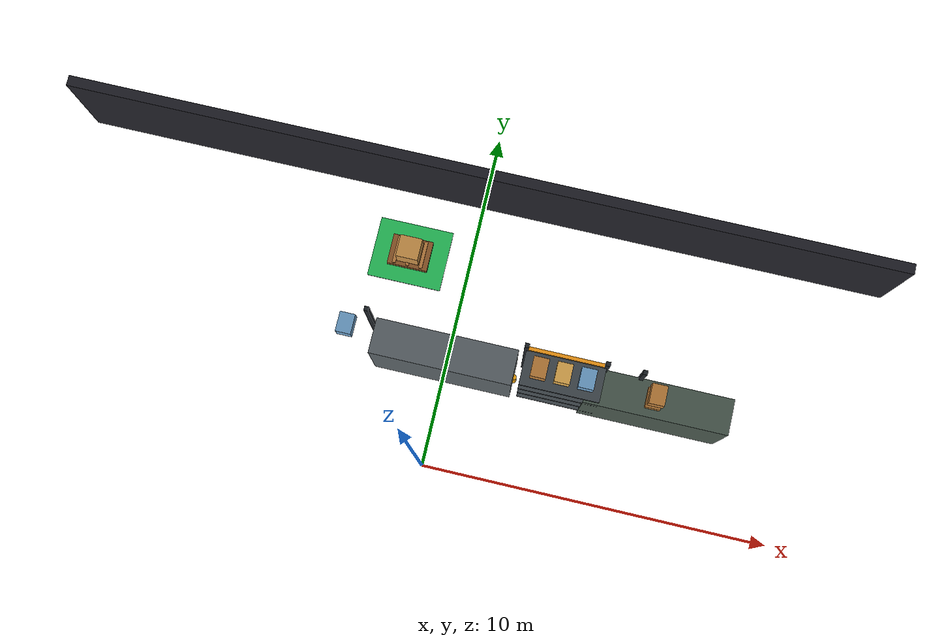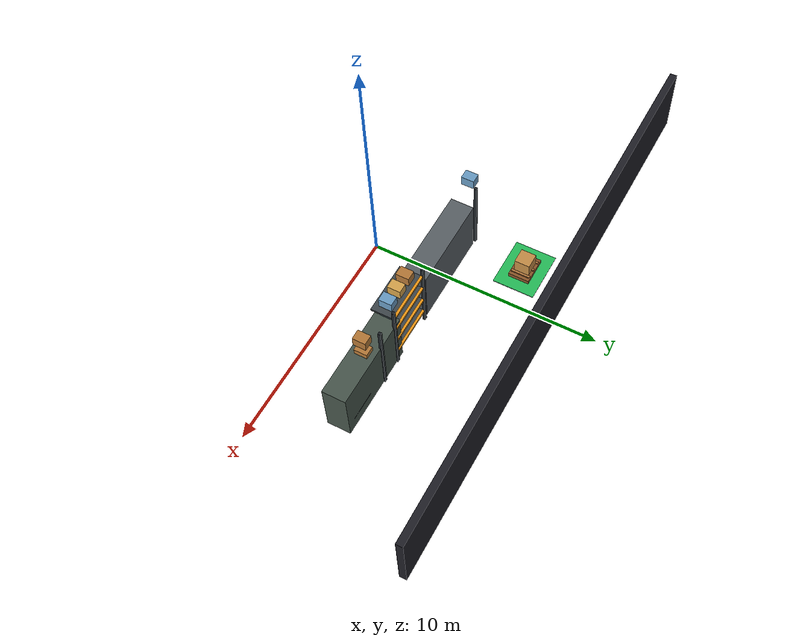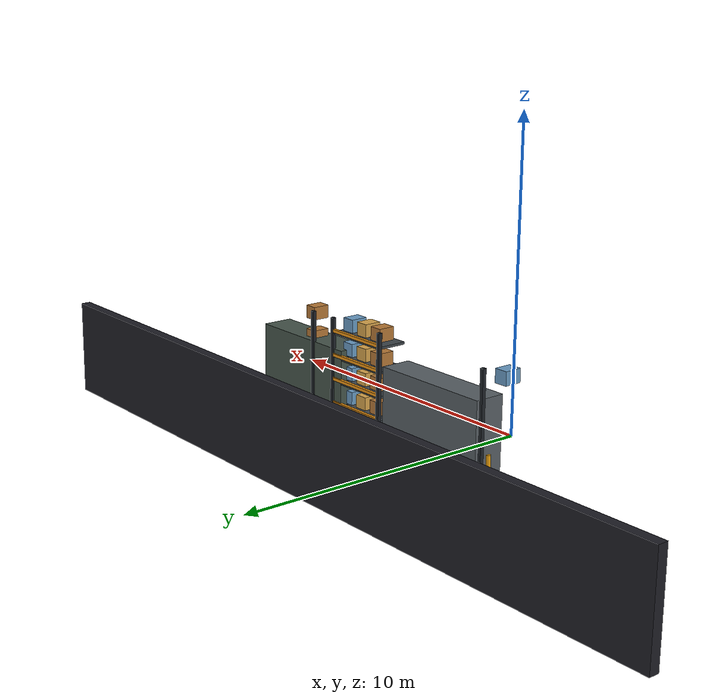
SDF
<sdf version="1.9">
 <world name="synaids_advanced_warehouse">
  <model name="wall_north">
   <static>true</static>
   <pose>0 8 1.5 0 0 0</pose>
   <link name="link">
    <collision name="collision"><geometry><box><size>24 0.3 3</size></box></geometry></collision>
    <visual name="visual">
     <geometry><box><size>24 0.3 3</size></box></geometry>
     <material><ambient>0.08 0.08 0.10 1</ambient><diffuse>0.12 0.12 0.15 1</diffuse></material>
    </visual>
   </link>
  </model>
  <model name="shelf_2">
   <static>true</static>
   <pose>0 3 1.2 0 0 0</pose>
   <link name="link">
    <collision name="collision"><geometry><box><size>4 1.0 2.4</size></box></geometry></collision>
    <visual name="visual">
     <geometry><box><size>4 1.0 2.4</size></box></geometry>
     <material><ambient>0.18 0.18 0.18 1</ambient><diffuse>0.35 0.38 0.40 1</diffuse></material>
    </visual>
   </link>
  </model>
  <model name="shelf_3">
   <static>true</static>
   <pose>6 3 1.2 0 0 0</pose>
   <link name="link">
    <collision name="collision"><geometry><box><size>4 1.0 2.4</size></box></geometry></collision>
    <visual name="visual">
     <geometry><box><size>4 1.0 2.4</size></box></geometry>
     <material><ambient>0.12 0.16 0.14 1</ambient><diffuse>0.28 0.34 0.30 1</diffuse></material>
    </visual>
   </link>
  </model>
  <model name="storage_rack_2_post_3">
   <static>true</static>
   <pose>-2.1999999999999997 3.5 1.7 0 0 0</pose>
   <link name="link">
    <visual name="visual">
     <geometry><box><size>0.12 0.12 3.4</size></box></geometry>
     <material>
      <ambient>0.12 0.14 0.16 1</ambient>
      <diffuse>0.12 0.14 0.16 1</diffuse>
      <specular>0.15 0.15 0.15 1</specular>
     </material>
    </visual>
    <collision name="collision"><geometry><box><size>0.12 0.12 3.4</size></box></geometry></collision>
   </link>
  </model>
  <model name="storage_rack_2_package_3_2">
   <static>true</static>
   <pose>-2.6499999999999995 3.0 3.21 0 0 0</pose>
   <link name="link">
    <visual name="visual">
     <geometry><box><size>0.42 0.55 0.42</size></box></geometry>
     <material>
      <ambient>0.42 0.62 0.78 1</ambient>
      <diffuse>0.42 0.62 0.78 1</diffuse>
      <specular>0.15 0.15 0.15 1</specular>
     </material>
    </visual>
    <collision name="collision"><geometry><box><size>0.42 0.55 0.42</size></box></geometry></collision>
   </link>
  </model>
  <model name="storage_rack_2_guard_right">
   <static>true</static>
   <pose>-2.0199999999999996 3.0 0.35 0 0 0</pose>
   <link name="link">
    <visual name="visual">
     <geometry><cylinder><radius>0.07</radius><length>0.7</length></cylinder></geometry>
     <material>
      <ambient>0.95 0.65 0.05 1</ambient>
      <diffuse>0.95 0.65 0.05 1</diffuse>
      <specular>0.15 0.15 0.15 1</specular>
     </material>
    </visual>
    <collision name="collision">
     <geometry><cylinder><radius>0.07</radius><length>0.7</length></cylinder></geometry>
    </collision>
   </link>
  </model>
  <model name="storage_rack_3_post_1">
   <static>true</static>
   <pose>2.1999999999999997 3.5 1.7 0 0 0</pose>
   <link name="link">
    <visual name="visual">
     <geometry><box><size>0.12 0.12 3.4</size></box></geometry>
     <material>
      <ambient>0.12 0.14 0.16 1</ambient>
      <diffuse>0.12 0.14 0.16 1</diffuse>
      <specular>0.15 0.15 0.15 1</specular>
     </material>
    </visual>
    <collision name="collision"><geometry><box><size>0.12 0.12 3.4</size></box></geometry></collision>
   </link>
  </model>
  <model name="storage_rack_3_post_3">
   <static>true</static>
   <pose>4.4 3.5 1.7 0 0 0</pose>
   <link name="link">
    <visual name="visual">
     <geometry><box><size>0.12 0.12 3.4</size></box></geometry>
     <material>
      <ambient>0.12 0.14 0.16 1</ambient>
      <diffuse>0.12 0.14 0.16 1</diffuse>
      <specular>0.15 0.15 0.15 1</specular>
     </material>
    </visual>
    <collision name="collision"><geometry><box><size>0.12 0.12 3.4</size></box></geometry></collision>
   </link>
  </model>
  <model name="storage_rack_3_beam_back_0">
   <static>true</static>
   <pose>3.3 3.5 0.65 0 0 0</pose>
   <link name="link">
    <visual name="visual">
     <geometry><box><size>2.2 0.1 0.1</size></box></geometry>
     <material>
      <ambient>0.95 0.60 0.08 1</ambient>
      <diffuse>0.95 0.60 0.08 1</diffuse>
      <specular>0.15 0.15 0.15 1</specular>
     </material>
    </visual>
    <collision name="collision"><geometry><box><size>2.2 0.1 0.1</size></box></geometry></collision>
   </link>
  </model>
  <model name="storage_rack_3_shelf_0">
   <static>true</static>
   <pose>3.3 3.0 0.5700000000000001 0 0 0</pose>
   <link name="link">
    <visual name="visual">
     <geometry><box><size>2.2 1.0 0.08</size></box></geometry>
     <material>
      <ambient>0.25 0.28 0.30 1</ambient>
      <diffuse>0.25 0.28 0.30 1</diffuse>
      <specular>0.15 0.15 0.15 1</specular>
     </material>
    </visual>
    <collision name="collision"><geometry><box><size>2.2 1.0 0.08</size></box></geometry></collision>
   </link>
  </model>
  <model name="storage_rack_3_package_0_0">
   <static>true</static>
   <pose>2.65 3.0 0.87 0 0 0</pose>
   <link name="link">
    <visual name="visual">
     <geometry><box><size>0.42 0.55 0.42</size></box></geometry>
     <material>
      <ambient>0.72 0.48 0.22 1</ambient>
      <diffuse>0.72 0.48 0.22 1</diffuse>
      <specular>0.15 0.15 0.15 1</specular>
     </material>
    </visual>
    <collision name="collision"><geometry><box><size>0.42 0.55 0.42</size></box></geometry></collision>
   </link>
  </model>
  <model name="storage_rack_3_package_0_1">
   <static>true</static>
   <pose>3.3 3.0 0.87 0 0 0</pose>
   <link name="link">
    <visual name="visual">
     <geometry><box><size>0.42 0.55 0.42</size></box></geometry>
     <material>
      <ambient>0.85 0.65 0.30 1</ambient>
      <diffuse>0.85 0.65 0.30 1</diffuse>
      <specular>0.15 0.15 0.15 1</specular>
     </material>
    </visual>
    <collision name="collision"><geometry><box><size>0.42 0.55 0.42</size></box></geometry></collision>
   </link>
  </model>
  <model name="storage_rack_3_package_0_2">
   <static>true</static>
   <pose>3.95 3.0 0.87 0 0 0</pose>
   <link name="link">
    <visual name="visual">
     <geometry><box><size>0.42 0.55 0.42</size></box></geometry>
     <material>
      <ambient>0.42 0.62 0.78 1</ambient>
      <diffuse>0.42 0.62 0.78 1</diffuse>
      <specular>0.15 0.15 0.15 1</specular>
     </material>
    </visual>
    <collision name="collision"><geometry><box><size>0.42 0.55 0.42</size></box></geometry></collision>
   </link>
  </model>
  <model name="storage_rack_3_beam_back_1">
   <static>true</static>
   <pose>3.3 3.5 1.4300000000000002 0 0 0</pose>
   <link name="link">
    <visual name="visual">
     <geometry><box><size>2.2 0.1 0.1</size></box></geometry>
     <material>
      <ambient>0.95 0.60 0.08 1</ambient>
      <diffuse>0.95 0.60 0.08 1</diffuse>
      <specular>0.15 0.15 0.15 1</specular>
     </material>
    </visual>
    <collision name="collision"><geometry><box><size>2.2 0.1 0.1</size></box></geometry></collision>
   </link>
  </model>
  <model name="storage_rack_3_shelf_1">
   <static>true</static>
   <pose>3.3 3.0 1.35 0 0 0</pose>
   <link name="link">
    <visual name="visual">
     <geometry><box><size>2.2 1.0 0.08</size></box></geometry>
     <material>
      <ambient>0.25 0.28 0.30 1</ambient>
      <diffuse>0.25 0.28 0.30 1</diffuse>
      <specular>0.15 0.15 0.15 1</specular>
     </material>
    </visual>
    <collision name="collision"><geometry><box><size>2.2 1.0 0.08</size></box></geometry></collision>
   </link>
  </model>
  <model name="storage_rack_3_package_1_0">
   <static>true</static>
   <pose>2.65 3.0 1.6500000000000001 0 0 0</pose>
   <link name="link">
    <visual name="visual">
     <geometry><box><size>0.42 0.55 0.42</size></box></geometry>
     <material>
      <ambient>0.72 0.48 0.22 1</ambient>
      <diffuse>0.72 0.48 0.22 1</diffuse>
      <specular>0.15 0.15 0.15 1</specular>
     </material>
    </visual>
    <collision name="collision"><geometry><box><size>0.42 0.55 0.42</size></box></geometry></collision>
   </link>
  </model>
  <model name="storage_rack_3_package_1_1">
   <static>true</static>
   <pose>3.3 3.0 1.6500000000000001 0 0 0</pose>
   <link name="link">
    <visual name="visual">
     <geometry><box><size>0.42 0.55 0.42</size></box></geometry>
     <material>
      <ambient>0.85 0.65 0.30 1</ambient>
      <diffuse>0.85 0.65 0.30 1</diffuse>
      <specular>0.15 0.15 0.15 1</specular>
     </material>
    </visual>
    <collision name="collision"><geometry><box><size>0.42 0.55 0.42</size></box></geometry></collision>
   </link>
  </model>
  <model name="storage_rack_3_package_1_2">
   <static>true</static>
   <pose>3.95 3.0 1.6500000000000001 0 0 0</pose>
   <link name="link">
    <visual name="visual">
     <geometry><box><size>0.42 0.55 0.42</size></box></geometry>
     <material>
      <ambient>0.42 0.62 0.78 1</ambient>
      <diffuse>0.42 0.62 0.78 1</diffuse>
      <specular>0.15 0.15 0.15 1</specular>
     </material>
    </visual>
    <collision name="collision"><geometry><box><size>0.42 0.55 0.42</size></box></geometry></collision>
   </link>
  </model>
  <model name="storage_rack_3_beam_back_2">
   <static>true</static>
   <pose>3.3 3.5 2.21 0 0 0</pose>
   <link name="link">
    <visual name="visual">
     <geometry><box><size>2.2 0.1 0.1</size></box></geometry>
     <material>
      <ambient>0.95 0.60 0.08 1</ambient>
      <diffuse>0.95 0.60 0.08 1</diffuse>
      <specular>0.15 0.15 0.15 1</specular>
     </material>
    </visual>
    <collision name="collision"><geometry><box><size>2.2 0.1 0.1</size></box></geometry></collision>
   </link>
  </model>
  <model name="storage_rack_3_shelf_2">
   <static>true</static>
   <pose>3.3 3.0 2.13 0 0 0</pose>
   <link name="link">
    <visual name="visual">
     <geometry><box><size>2.2 1.0 0.08</size></box></geometry>
     <material>
      <ambient>0.25 0.28 0.30 1</ambient>
      <diffuse>0.25 0.28 0.30 1</diffuse>
      <specular>0.15 0.15 0.15 1</specular>
     </material>
    </visual>
    <collision name="collision"><geometry><box><size>2.2 1.0 0.08</size></box></geometry></collision>
   </link>
  </model>
  <model name="storage_rack_3_package_2_0">
   <static>true</static>
   <pose>2.65 3.0 2.43 0 0 0</pose>
   <link name="link">
    <visual name="visual">
     <geometry><box><size>0.42 0.55 0.42</size></box></geometry>
     <material>
      <ambient>0.72 0.48 0.22 1</ambient>
      <diffuse>0.72 0.48 0.22 1</diffuse>
      <specular>0.15 0.15 0.15 1</specular>
     </material>
    </visual>
    <collision name="collision"><geometry><box><size>0.42 0.55 0.42</size></box></geometry></collision>
   </link>
  </model>
  <model name="storage_rack_3_package_2_1">
   <static>true</static>
   <pose>3.3 3.0 2.43 0 0 0</pose>
   <link name="link">
    <visual name="visual">
     <geometry><box><size>0.42 0.55 0.42</size></box></geometry>
     <material>
      <ambient>0.85 0.65 0.30 1</ambient>
      <diffuse>0.85 0.65 0.30 1</diffuse>
      <specular>0.15 0.15 0.15 1</specular>
     </material>
    </visual>
    <collision name="collision"><geometry><box><size>0.42 0.55 0.42</size></box></geometry></collision>
   </link>
  </model>
  <model name="storage_rack_3_package_2_2">
   <static>true</static>
   <pose>3.95 3.0 2.43 0 0 0</pose>
   <link name="link">
    <visual name="visual">
     <geometry><box><size>0.42 0.55 0.42</size></box></geometry>
     <material>
      <ambient>0.42 0.62 0.78 1</ambient>
      <diffuse>0.42 0.62 0.78 1</diffuse>
      <specular>0.15 0.15 0.15 1</specular>
     </material>
    </visual>
    <collision name="collision"><geometry><box><size>0.42 0.55 0.42</size></box></geometry></collision>
   </link>
  </model>
  <model name="storage_rack_3_beam_back_3">
   <static>true</static>
   <pose>3.3 3.5 2.9899999999999998 0 0 0</pose>
   <link name="link">
    <visual name="visual">
     <geometry><box><size>2.2 0.1 0.1</size></box></geometry>
     <material>
      <ambient>0.95 0.60 0.08 1</ambient>
      <diffuse>0.95 0.60 0.08 1</diffuse>
      <specular>0.15 0.15 0.15 1</specular>
     </material>
    </visual>
    <collision name="collision"><geometry><box><size>2.2 0.1 0.1</size></box></geometry></collision>
   </link>
  </model>
  <model name="storage_rack_3_shelf_3">
   <static>true</static>
   <pose>3.3 3.0 2.9099999999999997 0 0 0</pose>
   <link name="link">
    <visual name="visual">
     <geometry><box><size>2.2 1.0 0.08</size></box></geometry>
     <material>
      <ambient>0.25 0.28 0.30 1</ambient>
      <diffuse>0.25 0.28 0.30 1</diffuse>
      <specular>0.15 0.15 0.15 1</specular>
     </material>
    </visual>
    <collision name="collision"><geometry><box><size>2.2 1.0 0.08</size></box></geometry></collision>
   </link>
  </model>
  <model name="storage_rack_3_package_3_0">
   <static>true</static>
   <pose>2.65 3.0 3.21 0 0 0</pose>
   <link name="link">
    <visual name="visual">
     <geometry><box><size>0.42 0.55 0.42</size></box></geometry>
     <material>
      <ambient>0.72 0.48 0.22 1</ambient>
      <diffuse>0.72 0.48 0.22 1</diffuse>
      <specular>0.15 0.15 0.15 1</specular>
     </material>
    </visual>
    <collision name="collision"><geometry><box><size>0.42 0.55 0.42</size></box></geometry></collision>
   </link>
  </model>
  <model name="storage_rack_3_package_3_1">
   <static>true</static>
   <pose>3.3 3.0 3.21 0 0 0</pose>
   <link name="link">
    <visual name="visual">
     <geometry><box><size>0.42 0.55 0.42</size></box></geometry>
     <material>
      <ambient>0.85 0.65 0.30 1</ambient>
      <diffuse>0.85 0.65 0.30 1</diffuse>
      <specular>0.15 0.15 0.15 1</specular>
     </material>
    </visual>
    <collision name="collision"><geometry><box><size>0.42 0.55 0.42</size></box></geometry></collision>
   </link>
  </model>
  <model name="storage_rack_3_package_3_2">
   <static>true</static>
   <pose>3.95 3.0 3.21 0 0 0</pose>
   <link name="link">
    <visual name="visual">
     <geometry><box><size>0.42 0.55 0.42</size></box></geometry>
     <material>
      <ambient>0.42 0.62 0.78 1</ambient>
      <diffuse>0.42 0.62 0.78 1</diffuse>
      <specular>0.15 0.15 0.15 1</specular>
     </material>
    </visual>
    <collision name="collision"><geometry><box><size>0.42 0.55 0.42</size></box></geometry></collision>
   </link>
  </model>
  <model name="storage_rack_3_guard_left">
   <static>true</static>
   <pose>2.0199999999999996 3.0 0.35 0 0 0</pose>
   <link name="link">
    <visual name="visual">
     <geometry><cylinder><radius>0.07</radius><length>0.7</length></cylinder></geometry>
     <material>
      <ambient>0.95 0.65 0.05 1</ambient>
      <diffuse>0.95 0.65 0.05 1</diffuse>
      <specular>0.15 0.15 0.15 1</specular>
     </material>
    </visual>
    <collision name="collision">
     <geometry><cylinder><radius>0.07</radius><length>0.7</length></cylinder></geometry>
    </collision>
   </link>
  </model>
  <model name="storage_rack_3_guard_right">
   <static>true</static>
   <pose>4.58 3.0 0.35 0 0 0</pose>
   <link name="link">
    <visual name="visual">
     <geometry><cylinder><radius>0.07</radius><length>0.7</length></cylinder></geometry>
     <material>
      <ambient>0.95 0.65 0.05 1</ambient>
      <diffuse>0.95 0.65 0.05 1</diffuse>
      <specular>0.15 0.15 0.15 1</specular>
     </material>
    </visual>
    <collision name="collision">
     <geometry><cylinder><radius>0.07</radius><length>0.7</length></cylinder></geometry>
    </collision>
   </link>
  </model>
  <model name="storage_rack_4_post_1">
   <static>true</static>
   <pose>5.4 3.5 1.7 0 0 0</pose>
   <link name="link">
    <visual name="visual">
     <geometry><box><size>0.12 0.12 3.4</size></box></geometry>
     <material>
      <ambient>0.12 0.14 0.16 1</ambient>
      <diffuse>0.12 0.14 0.16 1</diffuse>
      <specular>0.15 0.15 0.15 1</specular>
     </material>
    </visual>
    <collision name="collision"><geometry><box><size>0.12 0.12 3.4</size></box></geometry></collision>
   </link>
  </model>
  <model name="storage_rack_4_shelf_0">
   <static>true</static>
   <pose>6.5 3.0 0.5700000000000001 0 0 0</pose>
   <link name="link">
    <visual name="visual">
     <geometry><box><size>2.2 1.0 0.08</size></box></geometry>
     <material>
      <ambient>0.25 0.28 0.30 1</ambient>
      <diffuse>0.25 0.28 0.30 1</diffuse>
      <specular>0.15 0.15 0.15 1</specular>
     </material>
    </visual>
    <collision name="collision"><geometry><box><size>2.2 1.0 0.08</size></box></geometry></collision>
   </link>
  </model>
  <model name="storage_rack_4_package_0_0">
   <static>true</static>
   <pose>5.85 3.0 0.87 0 0 0</pose>
   <link name="link">
    <visual name="visual">
     <geometry><box><size>0.42 0.55 0.42</size></box></geometry>
     <material>
      <ambient>0.72 0.48 0.22 1</ambient>
      <diffuse>0.72 0.48 0.22 1</diffuse>
      <specular>0.15 0.15 0.15 1</specular>
     </material>
    </visual>
    <collision name="collision"><geometry><box><size>0.42 0.55 0.42</size></box></geometry></collision>
   </link>
  </model>
  <model name="storage_rack_4_package_1_0">
   <static>true</static>
   <pose>5.85 3.0 1.6500000000000001 0 0 0</pose>
   <link name="link">
    <visual name="visual">
     <geometry><box><size>0.42 0.55 0.42</size></box></geometry>
     <material>
      <ambient>0.72 0.48 0.22 1</ambient>
      <diffuse>0.72 0.48 0.22 1</diffuse>
      <specular>0.15 0.15 0.15 1</specular>
     </material>
    </visual>
    <collision name="collision"><geometry><box><size>0.42 0.55 0.42</size></box></geometry></collision>
   </link>
  </model>
  <model name="storage_rack_4_package_2_0">
   <static>true</static>
   <pose>5.85 3.0 2.43 0 0 0</pose>
   <link name="link">
    <visual name="visual">
     <geometry><box><size>0.42 0.55 0.42</size></box></geometry>
     <material>
      <ambient>0.72 0.48 0.22 1</ambient>
      <diffuse>0.72 0.48 0.22 1</diffuse>
      <specular>0.15 0.15 0.15 1</specular>
     </material>
    </visual>
    <collision name="collision"><geometry><box><size>0.42 0.55 0.42</size></box></geometry></collision>
   </link>
  </model>
  <model name="storage_rack_4_package_3_0">
   <static>true</static>
   <pose>5.85 3.0 3.21 0 0 0</pose>
   <link name="link">
    <visual name="visual">
     <geometry><box><size>0.42 0.55 0.42</size></box></geometry>
     <material>
      <ambient>0.72 0.48 0.22 1</ambient>
      <diffuse>0.72 0.48 0.22 1</diffuse>
      <specular>0.15 0.15 0.15 1</specular>
     </material>
    </visual>
    <collision name="collision"><geometry><box><size>0.42 0.55 0.42</size></box></geometry></collision>
   </link>
  </model>
  <model name="storage_rack_4_guard_left">
   <static>true</static>
   <pose>5.220000000000001 3.0 0.35 0 0 0</pose>
   <link name="link">
    <visual name="visual">
     <geometry><cylinder><radius>0.07</radius><length>0.7</length></cylinder></geometry>
     <material>
      <ambient>0.95 0.65 0.05 1</ambient>
      <diffuse>0.95 0.65 0.05 1</diffuse>
      <specular>0.15 0.15 0.15 1</specular>
     </material>
    </visual>
    <collision name="collision">
     <geometry><cylinder><radius>0.07</radius><length>0.7</length></cylinder></geometry>
    </collision>
   </link>
  </model>
  <model name="pickup_zone_3">
   <static>true</static>
   <pose>-1.8 6.0 0.012 0 0 0</pose>
   <link name="link">
    <visual name="visual">
     <geometry><box><size>2.2 1.8 0.025</size></box></geometry>
     <material>
      <ambient>0.15 0.75 0.35 1</ambient>
      <diffuse>0.15 0.75 0.35 1</diffuse>
      <specular>0.15 0.15 0.15 1</specular>
     </material>
    </visual>
   </link>
  </model>
  <model name="pickup_pallet_3_base">
   <static>true</static>
   <pose>-1.8 6.0 0.11 0 0 0</pose>
   <link name="link">
    <visual name="visual">
     <geometry><box><size>1.2 0.9 0.18</size></box></geometry>
     <material>
      <ambient>0.55 0.34 0.16 1</ambient>
      <diffuse>0.55 0.34 0.16 1</diffuse>
      <specular>0.15 0.15 0.15 1</specular>
     </material>
    </visual>
    <collision name="collision"><geometry><box><size>1.2 0.9 0.18</size></box></geometry></collision>
   </link>
  </model>
  <model name="pickup_pallet_3_slat_0">
   <static>true</static>
   <pose>-2.2 6.0 0.22 0 0 0</pose>
   <link name="link">
    <visual name="visual">
     <geometry><box><size>0.1 0.82 0.06</size></box></geometry>
     <material>
      <ambient>0.72 0.48 0.24 1</ambient>
      <diffuse>0.72 0.48 0.24 1</diffuse>
      <specular>0.15 0.15 0.15 1</specular>
     </material>
    </visual>
    <collision name="collision"><geometry><box><size>0.1 0.82 0.06</size></box></geometry></collision>
   </link>
  </model>
  <model name="pickup_pallet_3_slat_1">
   <static>true</static>
   <pose>-1.8000000000000003 6.0 0.22 0 0 0</pose>
   <link name="link">
    <visual name="visual">
     <geometry><box><size>0.1 0.82 0.06</size></box></geometry>
     <material>
      <ambient>0.72 0.48 0.24 1</ambient>
      <diffuse>0.72 0.48 0.24 1</diffuse>
      <specular>0.15 0.15 0.15 1</specular>
     </material>
    </visual>
    <collision name="collision"><geometry><box><size>0.1 0.82 0.06</size></box></geometry></collision>
   </link>
  </model>
  <model name="pickup_pallet_3_slat_2">
   <static>true</static>
   <pose>-1.4000000000000001 6.0 0.22 0 0 0</pose>
   <link name="link">
    <visual name="visual">
     <geometry><box><size>0.1 0.82 0.06</size></box></geometry>
     <material>
      <ambient>0.72 0.48 0.24 1</ambient>
      <diffuse>0.72 0.48 0.24 1</diffuse>
      <specular>0.15 0.15 0.15 1</specular>
     </material>
    </visual>
    <collision name="collision"><geometry><box><size>0.1 0.82 0.06</size></box></geometry></collision>
   </link>
  </model>
  <model name="pickup_package_3">
   <static>true</static>
   <pose>-1.8 6.0 0.48 0 0 0</pose>
   <link name="link">
    <visual name="visual">
     <geometry><box><size>0.65 0.65 0.65</size></box></geometry>
     <material>
      <ambient>0.78 0.56 0.28 1</ambient>
      <diffuse>0.78 0.56 0.28 1</diffuse>
      <specular>0.15 0.15 0.15 1</specular>
     </material>
    </visual>
    <collision name="collision"><geometry><box><size>0.65 0.65 0.65</size></box></geometry></collision>
   </link>
  </model>
 </world>
</sdf>
